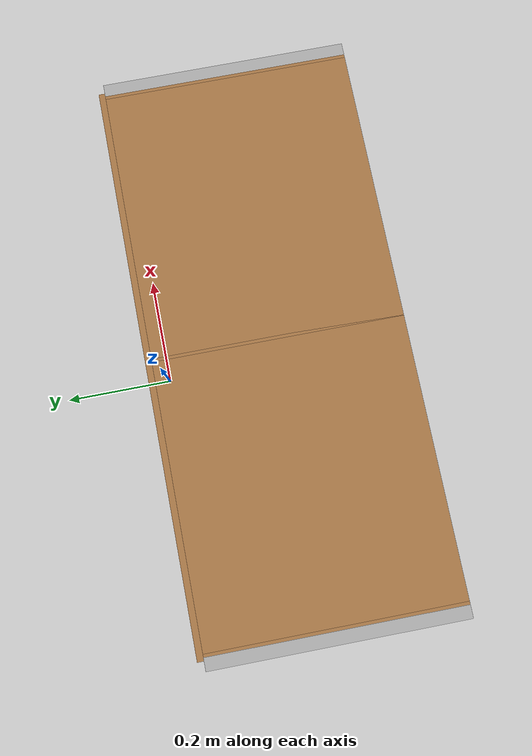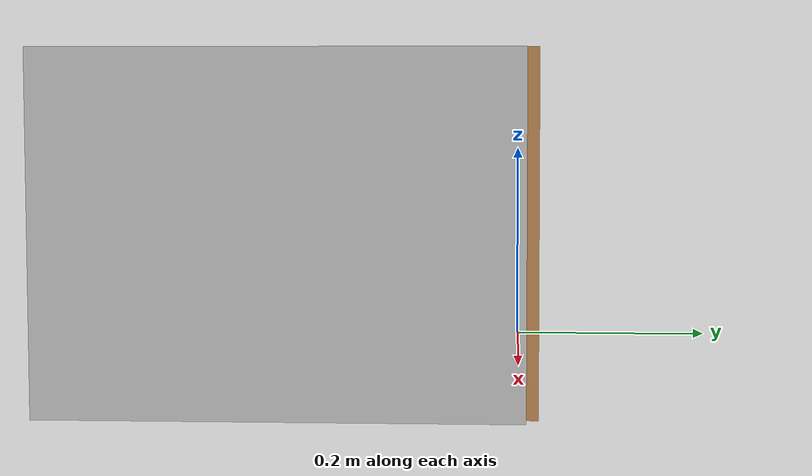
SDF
<?xml version="1.0" ?>
<sdf version="1.5">
  <model name="bookshelf_i">
    <static>true</static>
    <link name="link">
      <inertial>
        <mass>1.0</mass>
      </inertial>
      <collision name="back">
        <pose>0 0.01 0.15 0 0 0</pose>
        <geometry>
          <box>
            <size>0.9 0.01 0.3</size>
          </box>
        </geometry>
      </collision>
      <visual name="visual1">
        <pose>0 0.01 0.15 0 0 0</pose>
        <geometry>
          <box>
            <size>0.9 0.01 0.3</size>
          </box>
        </geometry>
        <material>
          <script>
            <uri>file://media/materials/scripts/gazebo.material</uri>
            <name>Gazebo/Wood</name>
          </script>
        </material>
      </visual>

      <collision name="left_side">
        <pose>0.455 -0.195 0.15 0 0 0</pose>
        <geometry>
          <box>
            <size>0.02 0.4 0.3</size>
          </box>
        </geometry>
      </collision>
      <visual name="visual2">
        <pose>0.455 -0.195 0.15 0 0 0</pose>
        <geometry>
          <box>
            <size>0.02 0.4 0.3</size>
          </box>
        </geometry>
        <material>
          <script>
            <uri>model://bookshelf_i/materials11/scripts</uri>
            <uri>model://bookshelf_i/materials11/textures</uri>
            <name>BookShelf/11</name>
          </script>
        </material>
      </visual>

      <collision name="left_side_inner">
        <pose>0.4425 -0.195 0.15 0 0 0</pose>
        <geometry>
          <box>
            <size>0.005 0.4 0.3</size>
          </box>
        </geometry>
      </collision>
      <visual name="visual2_inner">
        <pose>0.4425 -0.195 0.15 0 0 0</pose>
        <geometry>
          <box>
            <size>0.005 0.4 0.3</size>
          </box>
        </geometry>
        <material>
          <script>
            <uri>file://media/materials/scripts/gazebo.material</uri>
            <name>Gazebo/Wood</name>
          </script>
        </material>
      </visual>

      <collision name="right_side">
        <pose>-0.455 -0.195 0.15 0 0 0</pose>
        <geometry>
          <box>
            <size>0.02 0.4 0.3</size>
          </box>
        </geometry>
      </collision>
      <visual name="visual3">
        <pose>-0.455 -0.195 0.15 0 0 0</pose>
        <geometry>
          <box>
            <size>0.02 0.4 0.3</size>
          </box>
        </geometry>
        <material>
          <script>
            <uri>model://bookshelf_i/materials11/scripts</uri>
            <uri>model://bookshelf_i/materials11/textures</uri>
            <name>BookShelf/11</name>
          </script>
        </material>
      </visual>
      <collision name="right_side_inner">
        <pose>-0.4425 -0.195 0.15 0 0 0</pose>
        <geometry>
          <box>
            <size>0.005 0.4 0.3</size>
          </box>
        </geometry>
      </collision>
      <visual name="visual3_inner">
        <pose>-0.4425 -0.195 0.15 0 0 0</pose>
        <geometry>
          <box>
            <size>0.005 0.4 0.3</size>
          </box>
        </geometry>
        <material>
          <script>
            <uri>file://media/materials/scripts/gazebo.material</uri>
            <name>Gazebo/Wood</name>
          </script>
        </material>
      </visual>

      <collision name="right_side_center">
        <pose>-0.0 -0.195 0.15 0 0 0</pose>
        <geometry>
          <box>
            <size>0.005 0.4 0.3</size>
          </box>
        </geometry>
      </collision>
      <visual name="visual3_center">
        <pose>-0.0 -0.195 0.15 0 0 0</pose>
        <geometry>
          <box>
            <size>0.005 0.4 0.3</size>
          </box>
        </geometry>
        <material>
          <script>
            <uri>file://media/materials/scripts/gazebo.material</uri>
            <name>Gazebo/Wood</name>
          </script>
        </material>
      </visual>

      <collision name="bottom">
        <pose>0 -0.195 0.0075 0 0 0</pose>
        <geometry>
          <box>
            <size>0.88 0.4 0.015</size>
          </box>
        </geometry>
      </collision>
      <visual name="visual4">
        <pose>0 -0.195 0.0075 0 0 0</pose>
        <geometry>
          <box>
            <size>0.88 0.4 0.015</size>
          </box>
        </geometry>
        <material>
          <script>
            <uri>file://media/materials/scripts/gazebo.material</uri>
            <name>Gazebo/Wood</name>
          </script>
        </material>
      </visual>
      <collision name="top">
        <pose>0 -0.195 0.2975 0 0 0</pose>
        <geometry>
          <box>
            <size>0.88 0.4 0.005</size>
          </box>
        </geometry>
      </collision>
      <visual name="visual5">
        <pose>0 -0.195 0.2975 0 0 0</pose>
        <geometry>
          <box>
            <size>0.88 0.4 0.005</size>
          </box>
        </geometry>
        <material>
          <script>
            <uri>file://media/materials/scripts/gazebo.material</uri>
            <name>Gazebo/Wood</name>
          </script>
        </material>
      </visual>
      <collision name="low_shelf">
        <pose>0 -0.195 0.1075 0 0 0</pose>
        <geometry>
          <box>
            <size>0.88 0.4 0.005</size>
          </box>
        </geometry>
      </collision>
      <visual name="visual6">
        <pose>0 -0.195 0.1075 0 0 0</pose>
        <geometry>
          <box>
            <size>0.88 0.4 0.005</size>
          </box>
        </geometry>
        <material>
          <script>
            <uri>file://media/materials/scripts/gazebo.material</uri>
            <name>Gazebo/Wood</name>
          </script>
        </material>
      </visual>
      <collision name="high_shelf">
        <pose>0 -0.195 0.2 0 0 0</pose>
        <geometry>
          <box>
            <size>0.88 0.4 0.005</size>
          </box>
        </geometry>
      </collision>
      <visual name="visual7">
        <pose>0 -0.195 0.2 0 0 0</pose>
        <geometry>
          <box>
            <size>0.88 0.4 0.005</size>
          </box>
        </geometry>
        <material>
          <script>
            <uri>file://media/materials/scripts/gazebo.material</uri>
            <name>Gazebo/Wood</name>
          </script>
        </material>
      </visual>
    </link>
  </model>
</sdf>
